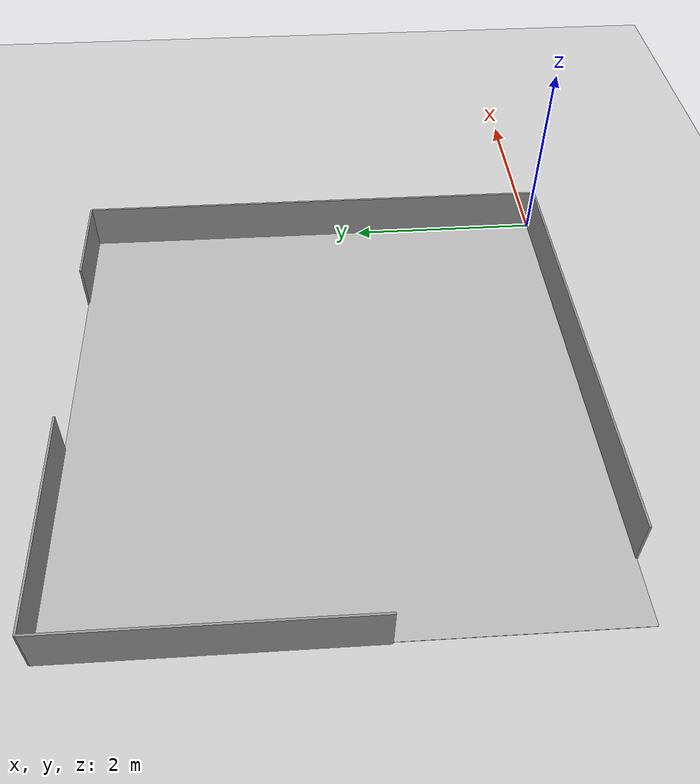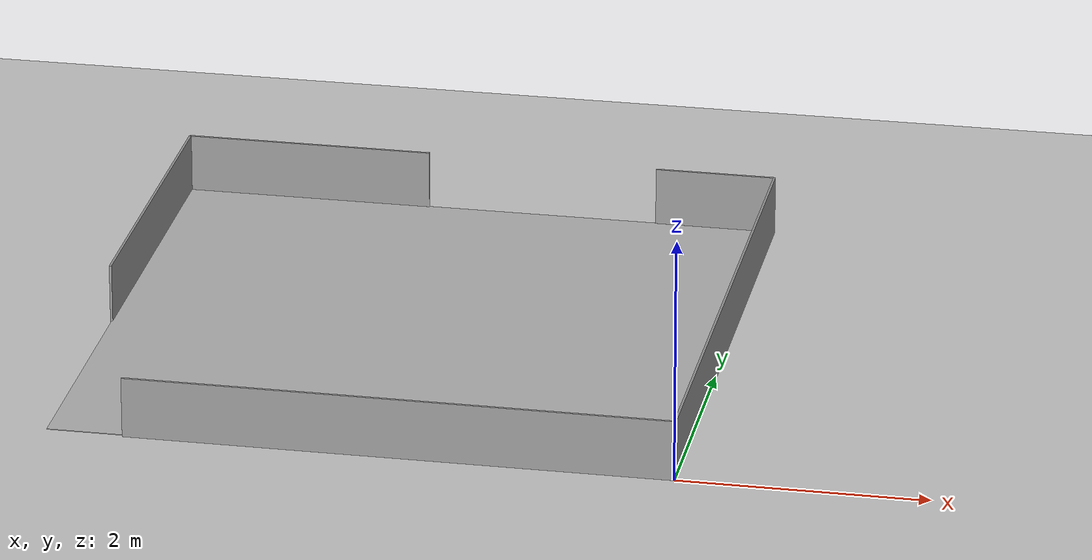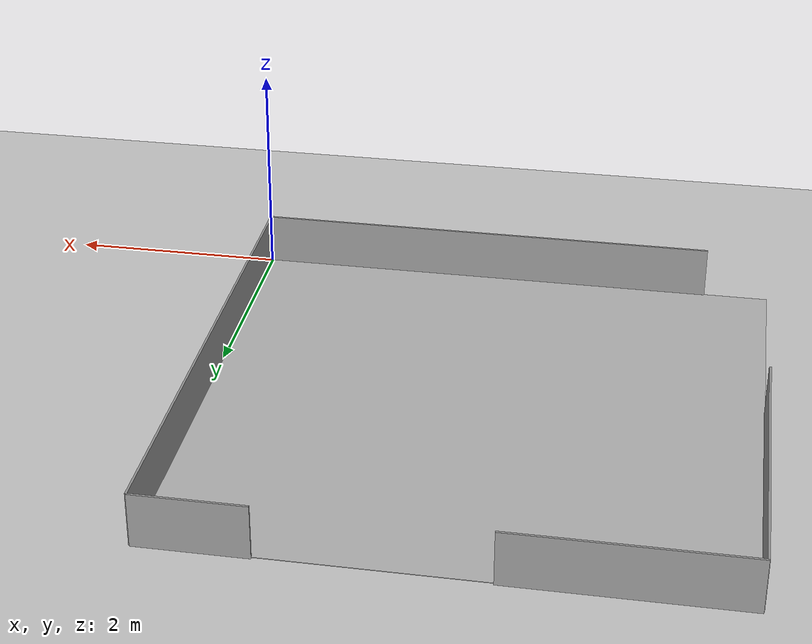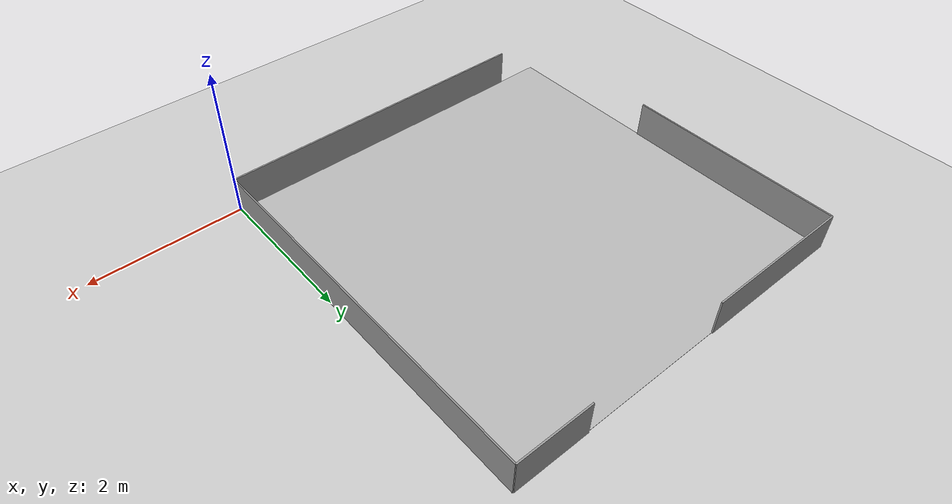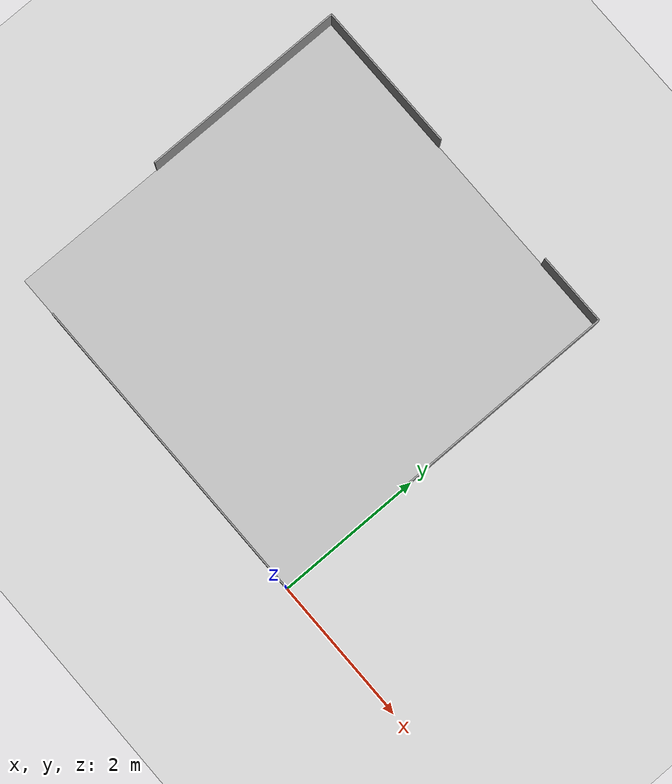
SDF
<sdf version="1.4">
 <world name="LLSF">
  <physics type="ode">
   <max_step_size>0.004</max_step_size>
   <real_time_factor>1</real_time_factor>
   <real_time_update_rate>250</real_time_update_rate>
  </physics>
  <scene><ambient>0.5 0.5 0.5 1.0</ambient><shadows>0</shadows></scene>
  <include><uri>model://ground_plane</uri></include>
  <include><uri>model://sun</uri></include>
  <include><uri>model://challenges</uri></include>
  <light name="light" type="point">
   <cast_shadows>false</cast_shadows>
   <pose>-12 3 1 0 0 0</pose>
   <diffuse>127 127 127 255</diffuse>
   <specular>25 25 25 255</specular>
   <attenuation>
    <range>20.0</range>
    <linear>0.01</linear>
    <constant>0.7</constant>
    <quadratic>0.00</quadratic>
   </attenuation>
  </light>
  <plugin name="llsf_refbox_comm" filename="libllsf_refbox_comm.so"/>
  <plugin name="timesync" filename="libtimesync.so"/>
  <plugin name="mps_placement" filename="libmps_placement.so"/>
 </world>
</sdf>

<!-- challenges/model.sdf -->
<sdf version="1.5">
  <model name="challenges">
    <pose>0 0 0 0 0 0</pose>
    <static>true</static>
    <link name="field">
      <pose>-2.5 2.5 0.01 0 0 0</pose>
      <collision name="collision">
        <geometry>
          <plane>
            <normal>0 0 1</normal>
            <size>5 5</size>
          </plane>
        </geometry>
        <surface>
          <friction>
            <ode>
              <mu>100</mu>
              <mu2>50</mu2>
            </ode>
          </friction>
        </surface>
      </collision>
      <visual name="carpet">
        <cast_shadows>false</cast_shadows>
        <geometry>
          <plane>
            <normal>0 0 1</normal>
            <size>5 5</size>
          </plane>
        </geometry>
        <material>
          <script>
            <uri>model://challenges/materials/scripts/</uri>
            <uri>model://challenges/materials/textures/</uri>
            <name>Logistics_League_Field/Image</name>
          </script>
        </material>
      </visual>
    </link>

    <link name="wall_left">
      <pose>-5 3.57 0.25 0 0 0</pose>
      <visual name="wall_left-visual">
        <geometry>
          <box>
            <size>.02 2.85 .5</size>
          </box>
        </geometry>
        <cast_shadows>false</cast_shadows>
        <material>
          <script>
            <uri>file://media/materials/scripts/gazebo.material</uri>
            <name>Gazebo/Grey</name>
          </script>
        </material>
      </visual>
      <collision name="wall_left-collision">
        <geometry>
          <box>
            <size>.02 2.85 .5</size>
          </box>
        </geometry>
      </collision>
    </link>

    <link name="wall_bottom">
      <pose>-2.19 0 0.25 0 0 1.5707</pose>
      <visual name="wall_bottom-visual">
        <geometry>
          <box>
            <size>.02 4.4 .5</size>
          </box>
        </geometry>
        <cast_shadows>false</cast_shadows>
        <material>
          <script>
            <uri>file://media/materials/scripts/gazebo.material</uri>
            <name>Gazebo/Grey</name>
          </script>
        </material>
      </visual>
      <collision name="wall_bottom-collision">
        <geometry>
          <box>
            <size>.02 4.4 .5</size>
          </box>
        </geometry>
      </collision>
    </link>

    <link name="wall_right">
      <pose>0 2.5 0.25 0 0 0</pose>
      <visual name="wall_right-visual">
        <geometry>
          <box>
            <size>.02 5 .5</size>
          </box>
        </geometry>
        <cast_shadows>false</cast_shadows>
        <material>
          <script>
            <uri>file://media/materials/scripts/gazebo.material</uri>
            <name>Gazebo/Grey</name>
          </script>
        </material>
      </visual>
      <collision name="wall_right-collision">
        <geometry>
          <box>
            <size>.02 5 .5</size>
          </box>
        </geometry>
      </collision>
    </link>

    <link name="wall_top_left">
      <pose>-3.97 5 0.25 0 0 1.5707</pose>
      <visual name="wall_top_left-visual">
        <geometry>
          <box>
            <size>.02 2.07 .5</size>
          </box>
        </geometry>
        <cast_shadows>false</cast_shadows>
        <material>
          <script>
            <uri>file://media/materials/scripts/gazebo.material</uri>
            <name>Gazebo/Grey</name>
          </script>
        </material>
      </visual>
      <collision name="wall_top_left-collision">
        <geometry>
          <box>
            <size>.02 2.07 .5</size>
          </box>
        </geometry>
      </collision>
    </link>

    <link name="wall_top_right">
      <pose>-0.5 5 0.25 0 0 1.5707</pose>
      <visual name="wall_top_right-visual">
        <geometry>
          <box>
            <size>.02 1 .5</size>
          </box>
        </geometry>
        <cast_shadows>false</cast_shadows>
        <material>
          <script>
            <uri>file://media/materials/scripts/gazebo.material</uri>
            <name>Gazebo/Grey</name>
          </script>
        </material>
      </visual>
      <collision name="wall_top_right-collision">
        <geometry>
          <box>
            <size>.02 1 .5</size>
          </box>
        </geometry>
      </collision>
    </link>

  </model>
</sdf>
